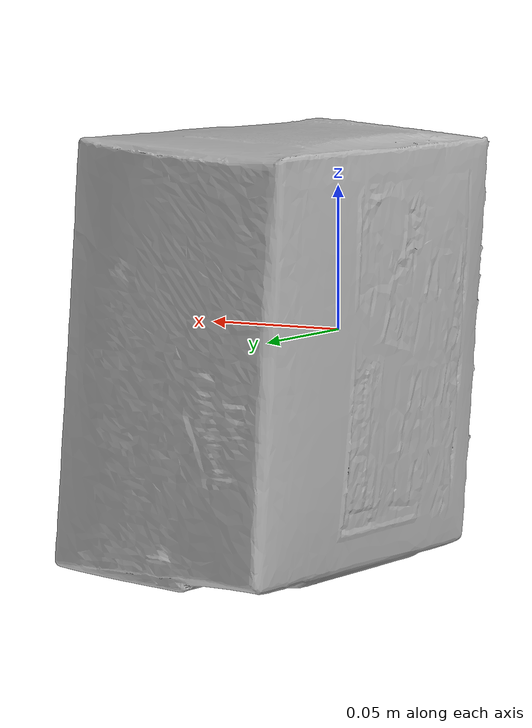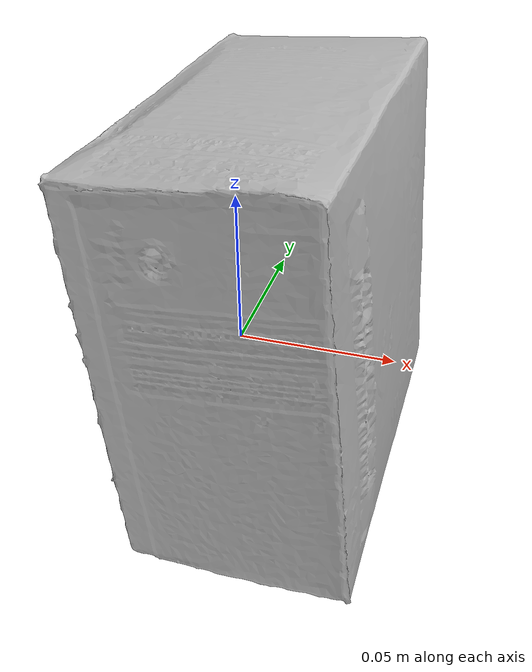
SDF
<?xml version='1.0'?>
<sdf version="1.4">
  <model name="Rusk">
    <static>false</static>
    <link name="link">
      <inertial>
        <pose>0.0041423375763338195 0.0369574876212466 -0.003252728532380386 -1.5953250873858253 0.07603784985983979 3.1205196479699255</pose>
        <mass>0.17603922025157276</mass>
        <inertia>
          <ixx>0.0006190330258662489</ixx>
          <ixy>4.526861546107179e-21</ixy>
          <ixz>9.046961137844025e-21</ixz>
          <iyy>0.0004075788106418477</iyy>
          <iyz>6.522610480527336e-20</iyz>
          <izz>0.00040650492665742004</izz>
        </inertia>
      </inertial>
      <collision name="collision">
        <geometry>
          <mesh>
            <!-- Use a downsampled mesh for collisions -->
            <uri>model:///Rusk/Rusk_250_collision.obj</uri>
	        </mesh>
        </geometry>
        <surface>
      </surface>
      </collision>
      <visual name="visual">
        <geometry>
          <mesh>
            <uri>model:///Rusk/Rusk_25k_tex.obj</uri>
	        </mesh>
        </geometry>
        <material>
          <script>
            <uri>model:///Rusk/Rusk.material</uri>
            <name>Rusk</name>
          </script>
        </material>
      </visual>
    </link>
  </model>
</sdf>
